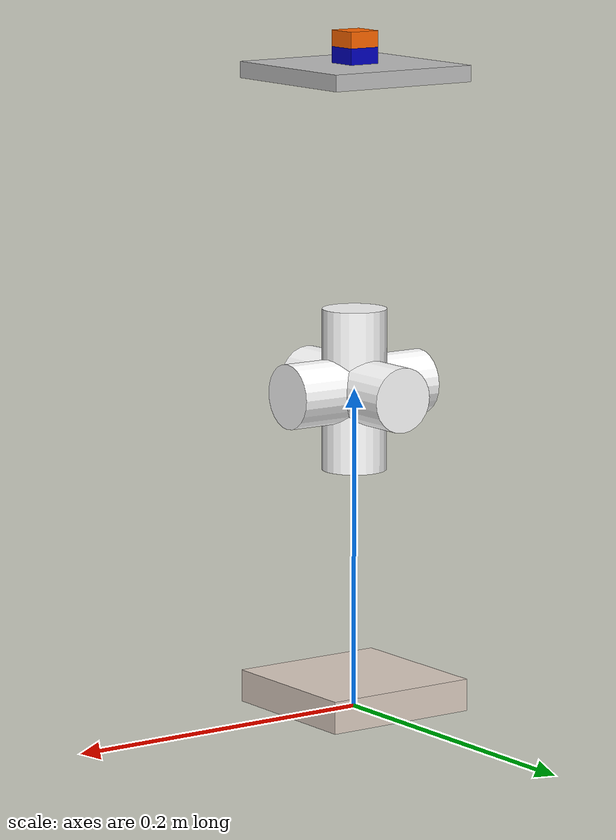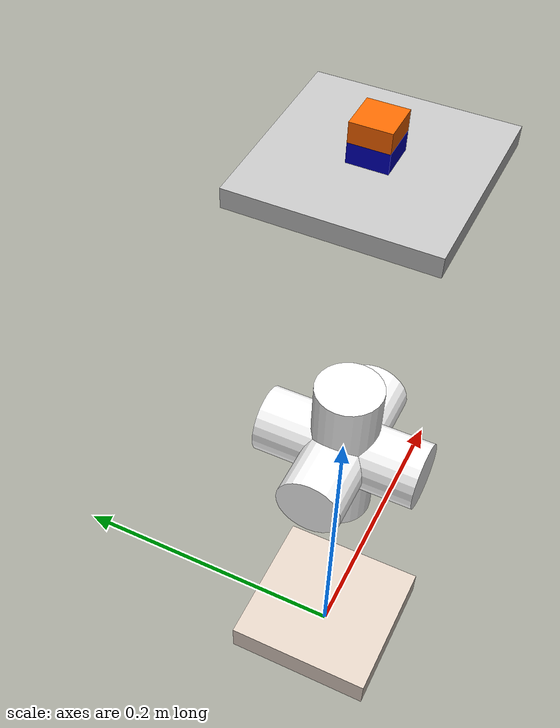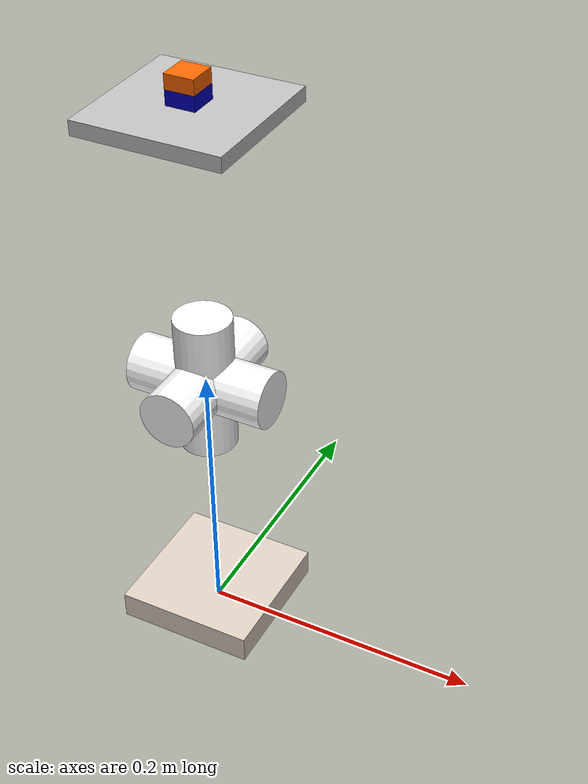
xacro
<?xml version="1.0"?>
<robot name="testenv6dof" xmlns:xacro="http://ros.org/wiki/xacro">

	<xacro:include filename="$(find testbench6dof)/urdf/testenv.xacro"/>

	<xacro:include filename="$(find testbench6dof)/urdf/gazebo_controller.xacro"/>

    <link name="world"/>
    <xacro:testenv parent="world"/>

</robot>

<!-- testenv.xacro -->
<robot xmlns:xacro="http://ros.org/wiki/xacro">
  <xacro:include filename="$(find testbench6dof)/urdf/testenv.gazebo.xacro"/>
  <xacro:include filename="$(find testbench6dof)/urdf/testenv.transmission.xacro"/>
  <xacro:include filename="$(find testbench6dof)/urdf/testenv.material.xacro"/>
  <!-- Inertia parameters -->
  <xacro:property name="testenv_dh_d0" value="${0.2}"/>
  <xacro:property name="testenv_base_dimx" value="0.1"/>
  <xacro:property name="testenv_base_dimy" value="0.1"/>
  <xacro:property name="testenv_base_dimz" value="0.02"/>
  <xacro:property name="testenv_base_mass" value="2000000"/>
  <xacro:property name="testenv_link_1_mass" value="500.00"/>
  <xacro:property name="testenv_link_1_radius" value="0.02"/>
  <xacro:property name="testenv_link_1_length" value="${0.1}"/>
  <xacro:property name="testenv_link_2_mass" value="500.0"/>
  <xacro:property name="testenv_link_2_radius" value="0.02"/>
  <xacro:property name="testenv_link_2_length" value="0.1"/>
  <xacro:property name="testenv_link_3_mass" value="200.0"/>
  <xacro:property name="testenv_link_3_radius" value="${0.02}"/>
  <xacro:property name="testenv_link_3_length" value="${0.1}"/>
  <xacro:property name="testenv_eef_offset" value="0.1"/>
  <xacro:property name="testenv_eef_link_dimx" value="${0.1}"/>
  <xacro:property name="testenv_eef_link_dimy" value="${0.1}"/>
  <xacro:property name="testenv_eef_link_dimz" value="${0.01}"/>
  <xacro:property name="testenv_eef_link_mass" value="${0.2}"/>

  <xacro:property name="testenv_joint_1_lim_min" value="${-0}"/>
  <xacro:property name="testenv_joint_1_lim_max" value="${+3}"/>
  <xacro:property name="testenv_joint_1_damping" value="${0.0}"/>
  <xacro:property name="testenv_joint_1_friction" value="${0.0}"/>
  <xacro:property name="testenv_joint_2_lim_min" value="${-0}"/>
  <xacro:property name="testenv_joint_2_lim_max" value="${3}"/>
  <xacro:property name="testenv_joint_2_damping" value="${0.0}"/>
  <xacro:property name="testenv_joint_2_friction" value="${0.0}"/>
  <xacro:property name="testenv_joint_3_lim_min" value="${-0}"/>
  <xacro:property name="testenv_joint_3_lim_max" value="${3}"/>
  <xacro:property name="testenv_joint_3_damping" value="${0.0}"/>
  <xacro:property name="testenv_joint_3_friction" value="${0.0}"/>
  <xacro:property name="testenv_joint_4_lim_min" value="${-3.14}"/>
  <xacro:property name="testenv_joint_4_lim_max" value="${3.14}"/>
  <xacro:property name="testenv_joint_4_damping" value="${0.0}"/>
  <xacro:property name="testenv_joint_4_friction" value="${0.0}"/>
  <xacro:property name="testenv_joint_5_lim_min" value="${-3.14}"/>
  <xacro:property name="testenv_joint_5_lim_max" value="${3.14}"/>
  <xacro:property name="testenv_joint_5_damping" value="${0.0}"/>
  <xacro:property name="testenv_joint_5_friction" value="${0.0}"/>
  <xacro:property name="testenv_joint_6_lim_min" value="${-3.14}"/>
  <xacro:property name="testenv_joint_6_lim_max" value="${3.14}"/>
  <xacro:property name="testenv_joint_6_damping" value="${0.0}"/>
  <xacro:property name="testenv_joint_6_friction" value="${0.0}"/>

  <xacro:property name="testenv_joint_1_velocity" value="${3.5}"/>
  <xacro:property name="testenv_joint_2_velocity" value="${3.5}"/>
  <xacro:property name="testenv_joint_3_velocity" value="${3.5}"/>
  <xacro:property name="testenv_joint_4_velocity" value="${40}"/>
  <xacro:property name="testenv_joint_5_velocity" value="${40}"/>
  <xacro:property name="testenv_joint_6_velocity" value="${40}"/>
  <xacro:property name="testenv_joint_1_effort" value="${3000000}"/>
  <xacro:property name="testenv_joint_2_effort" value="${3000000}"/>
  <xacro:property name="testenv_joint_3_effort" value="${300000}"/>
  <xacro:property name="testenv_joint_4_effort" value="${8000}"/>
  <xacro:property name="testenv_joint_5_effort" value="${8000}"/>
  <xacro:property name="testenv_joint_6_effort" value="${8000}"/>

  <xacro:property name="imu_height" value="0.01"/>
  <xacro:property name="imu_width" value="0.02"/>
  <xacro:property name="imu_x" value="0"/>
  <xacro:property name="imu_y" value="0"/>
  <xacro:property name="imu_z" value="0.00"/>
  <!-- DESCRIPTION -->
  <xacro:macro name="testenv" params="parent">
    <joint name="testenv_joint_0" type="fixed">
      <parent link="${parent}"/>
      <child link="testenv_base_link"/>
      <origin rpy="0.0 0.0 0.0" xyz="0.0 0.0 0.0"/>
    </joint>
    <link name="testenv_base_link">
      <xacro:cylinder_inertial2 length="${testenv_base_dimz}" mass="${testenv_base_mass}" radius="${testenv_base_dimy}"/>
      <visual>
        <origin xyz="0 0 ${testenv_base_dimz/2.0}"/>
        <geometry>
          <box size="${testenv_base_dimx} ${testenv_base_dimy} ${testenv_base_dimz}"/>
        </geometry>
        <material name="Brown"/>
      </visual>
      <collision>
        <origin xyz="0 0 ${testenv_base_dimz/2.0}"/>
        <geometry>
          <box size="${testenv_base_dimx} ${testenv_base_dimy} ${testenv_base_dimz}"/>
        </geometry>
      </collision>
    </link>
    <joint name="testenv_joint_1" type="prismatic">
      <parent link="testenv_base_link"/>
      <child link="testenv_link_1"/>
      <origin rpy="0.0 0.0 0.0" xyz="0.0 0.0 ${testenv_dh_d0}"/>
      <axis xyz="1 0 0"/>
      <limit effort="${testenv_joint_1_effort}" lower="${testenv_joint_1_lim_min}" upper="${testenv_joint_1_lim_max}" velocity="${testenv_joint_1_velocity}"/>
      <dynamics damping="${testenv_joint_1_damping}" friction="${testenv_joint_1_friction}"/>
    </joint>
    <link name="testenv_link_1">
      <xacro:cylinder_visual2 length="${testenv_link_1_length}" material="White" radius="${testenv_link_1_radius}">
        <origin rpy="0 ${0.5*pi} 0" xyz="0.0 0.0 ${0}"/>
      </xacro:cylinder_visual2>
      <xacro:cylinder_inertial2 length="${testenv_link_1_length}" mass="${testenv_link_1_mass}" radius="${testenv_link_1_radius}"/>
    </link>
    <joint name="testenv_joint_2" type="prismatic">
      <parent link="testenv_link_1"/>
      <child link="testenv_link_2"/>
      <origin rpy="${0} ${0} 0.0" xyz="0.0 0.0 ${0}"/>
      <axis xyz="0 1 0"/>
      <limit effort="${testenv_joint_2_effort}" lower="${testenv_joint_2_lim_min}" upper="${testenv_joint_2_lim_max}" velocity="${testenv_joint_2_velocity}"/>
      <dynamics damping="${testenv_joint_2_damping}" friction="${testenv_joint_2_friction}"/>
    </joint>
    <link name="testenv_link_2">
      <xacro:cylinder_visual2 length="${testenv_link_2_length}" material="White" radius="${testenv_link_2_radius}">
        <origin rpy="${0.5*pi} 0 0" xyz="${0} 0.0 0.0"/>
      </xacro:cylinder_visual2>
      <xacro:cylinder_inertial2 length="${testenv_link_2_length}" mass="${testenv_link_2_mass}" radius="${testenv_link_2_radius}"/>
    </link>
    <joint name="testenv_joint_3" type="prismatic">
      <parent link="testenv_link_2"/>
      <child link="testenv_link_3"/>
      <origin rpy="0.0 0.0 ${0}" xyz="${0} 0 0"/>
      <axis xyz="0 0 1"/>
      <limit effort="${testenv_joint_3_effort}" lower="${testenv_joint_3_lim_min}" upper="${testenv_joint_3_lim_max}" velocity="${testenv_joint_3_velocity}"/>
      <dynamics damping="${testenv_joint_3_damping}" friction="${testenv_joint_3_friction}"/>
    </joint>
    <link name="testenv_link_3">
      <xacro:cylinder_visual2 length="${testenv_link_3_length}" material="White" radius="${testenv_link_3_radius}">
        <origin rpy="0 ${0.5*pi*0} 0" xyz="${0} 0.0 0.0"/>
      </xacro:cylinder_visual2>
      <xacro:cylinder_inertial2 length="${testenv_link_3_length}" mass="${testenv_link_3_mass}" radius="${testenv_link_3_radius}"/>
    </link>

    <joint name="testenv_eef_joint0" type="fixed">
      <parent link="testenv_link_3"/>
      <child link="testenv_eef_link0"/>
      <origin rpy="0.0 0.0 0.0" xyz="0 0 ${testenv_eef_offset*2}"/>
    </joint>
    <link name="testenv_eef_link0">
      <xacro:cylinder_inertial2 length="${0.05}" mass="${0.2}" radius="${0.02}"/>
    </link>

    <joint name="testenv_joint_4" type="revolute">
      <parent link="testenv_eef_link0"/>
      <child link="testenv_link_4"/>
      <origin rpy="0.0 0.0 0.0" xyz="${0} 0.0 0.0"/>
      <axis xyz="0 0 1"/>
      <limit effort="${testenv_joint_4_effort}" lower="${testenv_joint_4_lim_min}" upper="${testenv_joint_4_lim_max}" velocity="${testenv_joint_4_velocity}"/>
      <dynamics damping="${testenv_joint_4_damping}" friction="${testenv_joint_4_friction}"/>
    </joint>
    <link name="testenv_link_4">
      <xacro:cylinder_inertial2 length="${0.05}" mass="${0.2}" radius="${0.02}"/>
    </link>
    <joint name="testenv_joint_5" type="revolute">
      <parent link="testenv_link_4"/>
      <child link="testenv_link_5"/>
      <origin rpy="0.0 0.0 0.0" xyz="${0} 0.0 0.0"/>
      <axis xyz="0 1 0"/>
      <limit effort="${testenv_joint_5_effort}" lower="${testenv_joint_5_lim_min}" upper="${testenv_joint_5_lim_max}" velocity="${testenv_joint_5_velocity}"/>
      <dynamics damping="${testenv_joint_5_damping}" friction="${testenv_joint_5_friction}"/>
    </joint>
    <link name="testenv_link_5">
      <xacro:cylinder_inertial2 length="${0.05}" mass="${0.2}" radius="${0.02}"/>
    </link>
    <joint name="testenv_joint_6" type="revolute">
      <parent link="testenv_link_5"/>
      <child link="testenv_link_6"/>
      <origin rpy="0.0 0.0 0.0" xyz="${0} 0.0 0.0"/>
      <axis xyz="1 0 0"/>
      <limit effort="${testenv_joint_6_effort}" lower="${testenv_joint_6_lim_min}" upper="${testenv_joint_6_lim_max}" velocity="${testenv_joint_6_velocity}"/>
      <dynamics damping="${testenv_joint_6_damping}" friction="${testenv_joint_6_friction}"/>
    </joint>
    <link name="testenv_link_6">
      <xacro:cylinder_inertial2 length="${0.05}" mass="${0.2}" radius="${0.02}"/>
    </link>
    <joint name="testenv_eef_joint" type="fixed">
      <parent link="testenv_link_6"/>
      <child link="testenv_eef_link"/>
      <origin rpy="0.0 0.0 0.0" xyz="0 0 ${testenv_eef_offset*0}"/>
    </joint>
    <link name="testenv_eef_link">
      <visual>
        <geometry>
          <box size="${testenv_eef_link_dimx} ${testenv_eef_link_dimy} ${testenv_eef_link_dimz}"/>
        </geometry>
        <material name="Silver"/>
        <origin rpy="0 0 0" xyz="${0} 0 ${-0.5*testenv_eef_link_dimz}"/>
      </visual>
      <collision>
        <geometry>
          <box size="${testenv_eef_link_dimx} ${testenv_eef_link_dimy} ${testenv_eef_link_dimz}"/>
        </geometry>
        <origin rpy="0 0 0" xyz="${0} 0 ${-0.5*testenv_eef_link_dimz}"/>
      </collision>
      <xacro:cylinder_inertial2 length="${testenv_eef_link_dimx}" mass="${testenv_eef_link_mass}" radius="${0.1}"/>
    </link>
    <xacro:testenv_gazebo/>
    <xacro:transmission_block2 joint_name="testenv_joint_1"/>
    <xacro:transmission_block2 joint_name="testenv_joint_2"/>
    <xacro:transmission_block2 joint_name="testenv_joint_3"/>
    <xacro:transmission_block2 joint_name="testenv_joint_4"/>
    <xacro:transmission_block2 joint_name="testenv_joint_5"/>
    <xacro:transmission_block2 joint_name="testenv_joint_6"/>
    <joint name="imu_fixed_joint" type="fixed">
      <parent link="testenv_eef_link"/>
      <child link="imu_sensor"/>
      <origin rpy="0.0 0 0.0" xyz="${imu_x} ${imu_y} ${imu_z}"/>
    </joint>
    <link name="imu_sensor">
      <collision>
        <origin rpy="0 0 0" xyz="0 0 ${imu_height/2}"/>
        <geometry>
          <box size="${imu_width} ${imu_width} ${imu_height}"/>
        </geometry>
      </collision>
      <visual>
        <origin rpy="0 0 0" xyz="0 0 ${imu_height/2}"/>
        <geometry>
          <box size="${imu_width} ${imu_width} ${imu_height}"/>
        </geometry>
        <material name="Blue"/>
      </visual>
      <inertial>
        <origin rpy="0 0 0" xyz="0 0 1"/>
        <mass value="1"/>
        <inertia ixx="1.0" ixy="0.0" ixz="0.0" iyy="1.0" iyz="0.0" izz="1.0"/>
      </inertial>
    </link>

    <joint name="mag_fixed_joint" type="fixed">
      <parent link="testenv_eef_link"/>
      <child link="mag_sensor"/>
      <origin rpy="0.0 0 0.0" xyz="${imu_x} ${imu_y} ${imu_z}"/>
    </joint>
    <link name="mag_sensor">
      <collision>
        <origin rpy="0 0 0" xyz="0 0 ${imu_height+imu_height/2}"/>
        <geometry>
          <box size="${imu_width} ${imu_width} ${imu_height}"/>
        </geometry>
      </collision>
      <visual>
        <origin rpy="0 0 0" xyz="0 0 ${imu_height+imu_height/2}"/>
        <geometry>
          <box size="${imu_width} ${imu_width} ${imu_height}"/>
        </geometry>
        <material name="Orange"/>
      </visual>
      <inertial>
        <origin rpy="0 0 0" xyz="0 0 1"/>
        <mass value="1"/>
        <inertia ixx="1.0" ixy="0.0" ixz="0.0" iyy="1.0" iyz="0.0" izz="1.0"/>
      </inertial>
    </link>

<gazebo>

      <plugin filename="libhector_gazebo_ros_imu.so" name="imu_controller">

        <alwaysOn>true</alwaysOn>
        <updateRate>1000.0</updateRate>
        <bodyName>imu_sensor</bodyName>
        <frameId>imu_sensor</frameId>
        <topicName>raw_imu</topicName>

        <accelDrift>0.1 0.1 0.1</accelDrift>
        <accelGaussianNoise>0.35 0.35 0.35</accelGaussianNoise>

        <rateDrift>0.1 0.1 0.1</rateDrift>
        <rateGaussianNoise>0.1 0.1 0.1</rateGaussianNoise>

        <headingDrift>0.005</headingDrift>
        <headingGaussianNoise>0.005</headingGaussianNoise>

      </plugin>

      <plugin filename="libhector_gazebo_ros_magnetic.so" name="magneto_controller">
        <alwaysOn>true</alwaysOn>
      <updateRate>1000.0</updateRate>
      <bodyName>mag_sensor</bodyName>
      <frameId>mag_sensor</frameId>
      <topicName>magnetic</topicName>
      <offset>0 0 0</offset>
      <drift>0.0 0.0 0.0</drift>
      <gaussianNoise>1.3e-2 1.3e-2 1.3e-2</gaussianNoise>
    </plugin>

    <plugin filename="libhector_gazebo_ros_imu.so" name="imu_controller2">

        <alwaysOn>true</alwaysOn>
        <updateRate>1000.0</updateRate>
        <bodyName>testenv_base_link</bodyName>
        <frameId>testenv_base_link</frameId>
        <topicName>raw_imu2</topicName>
        <accelDrift>0.1 0.1 0.1</accelDrift>
        <accelGaussianNoise>0.35 0.35 0.35</accelGaussianNoise>
        <rateDrift>0.1 0.1 0.1</rateDrift>
        <rateGaussianNoise>0.05 0.05 0.05</rateGaussianNoise>
        <headingDrift>0.005</headingDrift>
        <headingGaussianNoise>0.005</headingGaussianNoise>
      </plugin>

    <plugin filename="libhector_gazebo_ros_magnetic.so" name="magneto_controller2">
        <alwaysOn>true</alwaysOn>
      <updateRate>1000.0</updateRate>
      <bodyName>testenv_base_link</bodyName>
      <frameId>testenv_base_link</frameId>
      <topicName>magnetic2</topicName>
      <offset>0 0 0</offset>
      <drift>0.0 0.0 0.0</drift>
      <gaussianNoise>1.3e-2 1.3e-2 1.3e-2</gaussianNoise>
    </plugin>
    </gazebo>

  </xacro:macro>
</robot>

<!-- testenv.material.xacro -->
<robot xmlns:xacro="http://ros.org/wiki/xacro">

  <!-- Materials -->
  <material name="White">
    <color rgba="1.0 1.0 1.0 1.0"/>
  </material>
  <material name="Silver">
    <color rgba="0.75 0.75 0.75 1"/>
  </material>
  <material name="Brown">
    <color rgba="0.87 0.81 0.76 1"/>
  </material>
  <material name="Blue">
    <color rgba="0.0 0.0 0.75 1"/>
  </material>
  <material name="Grey">
    <color rgba="0.2 0.2 0.2 1"/>
  </material>
  <material name="Orange">
    <color rgba="1.0 0.4 0.0 1.0"/>
  </material>

  <!-- MACROS -->
  <xacro:macro name="cylinder_inertial2" params="radius length mass">
    <!-- *origin">-->
    <inertial>
      <mass value="${mass}"/>
      <inertia ixx="${0.0833333*mass * (3*radius*radius + length*length)}" ixy="0.0" ixz="0.0" iyy="${0.0833333*mass * (3*radius*radius + length*length)}" iyz="0.0" izz="${0.5*mass*radius*radius}"/>
    </inertial>
  </xacro:macro>

  <xacro:macro name="cylinder_visual2" params="radius length material *origin">
    <visual>
      <geometry>
        <cylinder length="${length}" radius="${radius}"/>
      </geometry>
      <material name="${material}"/>
      <xacro:insert_block name="origin"/>
    </visual>
  </xacro:macro>

  <xacro:macro name="cylinder_collision2" params="radius length *origin">
    <collision>
      <geometry>
        <cylinder length="${length}" radius="${radius}"/>
      </geometry>
      <xacro:insert_block name="origin"/>
    </collision>
  </xacro:macro>

</robot>
